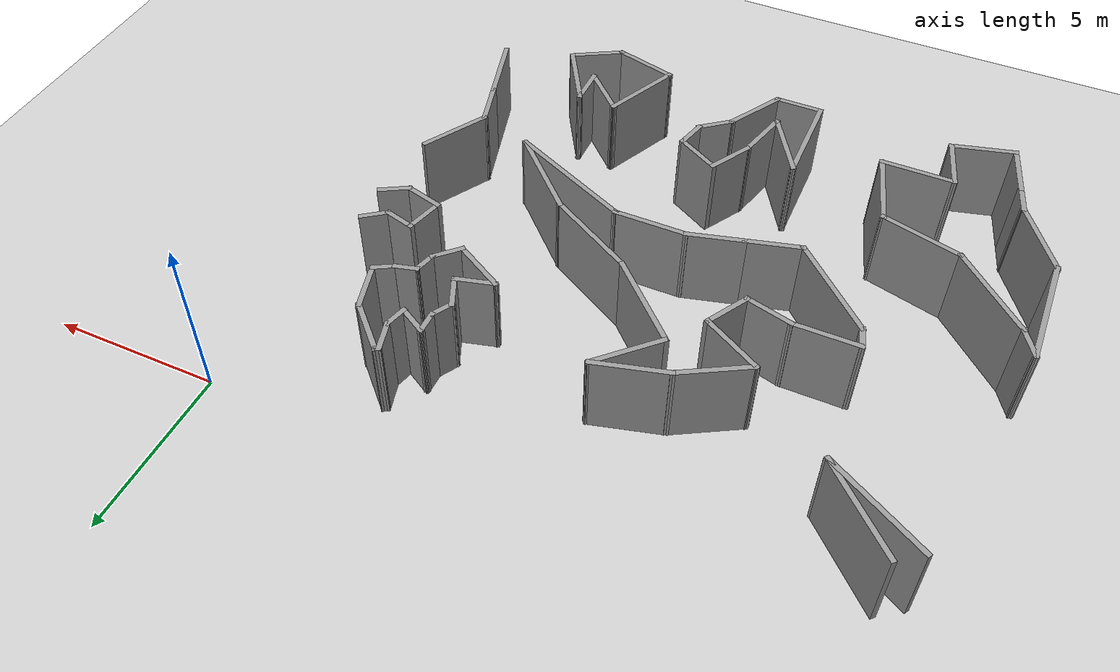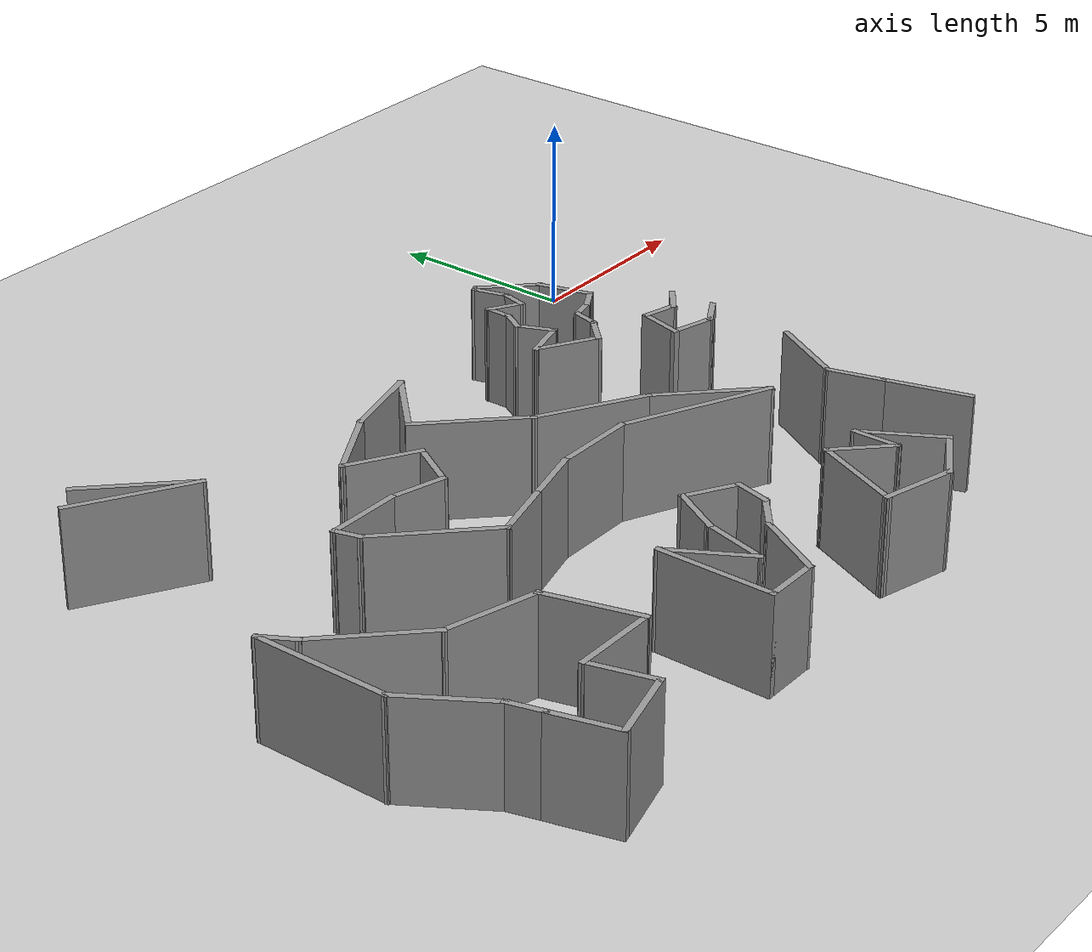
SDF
<sdf version="1.6">
 <world name="default">
  <model name="ground_plane">
   <static>1</static>
   <link name="link">
    <collision name="collision">
     <geometry><plane><normal>0 0 1</normal><size>100 100</size></plane></geometry>
     <surface><friction><ode><mu>100</mu><mu2>50</mu2></ode></friction></surface>
    </collision>
    <visual name="visual">
     <cast_shadows>0</cast_shadows>
     <geometry><plane><normal>0 0 1</normal><size>100 100</size></plane></geometry>
     <material>
      <script><uri>file://media/materials/scripts/gazebo.material</uri><name>Gazebo/Grey</name></script>
     </material>
    </visual>
   </link>
  </model>
  <model name="square_1">
   <pose>0.009703 -0.009719 0 0 -0 0</pose>
   <link name="Wall_112">
    <collision name="Wall_112_Collision">
     <geometry><box><size>3 0.15 2.5</size></box></geometry>
     <pose>0 0 1.25 0 -0 0</pose>
    </collision>
    <visual name="Wall_112_Visual">
     <pose>0 0 1.25 0 -0 0</pose>
     <geometry><box><size>3 0.15 2.5</size></box></geometry>
     <material>
      <script><uri>file://media/materials/scripts/gazebo.material</uri><name>Gazebo/Grey</name></script>
      <ambient>1 1 1 1</ambient>
     </material>
     <meta><layer>0</layer></meta>
    </visual>
    <pose>-5.78523 -8.94267 0 0 -0 2.35619</pose>
   </link>
   <link name="Wall_113">
    <collision name="Wall_113_Collision">
     <geometry><box><size>3 0.15 2.5</size></box></geometry>
     <pose>0 0 1.25 0 -0 0</pose>
    </collision>
    <visual name="Wall_113_Visual">
     <pose>0 0 1.25 0 -0 0</pose>
     <geometry><box><size>3 0.15 2.5</size></box></geometry>
     <material>
      <script><uri>file://media/materials/scripts/gazebo.material</uri><name>Gazebo/Grey</name></script>
      <ambient>1 1 1 1</ambient>
     </material>
     <meta><layer>0</layer></meta>
    </visual>
    <pose>-8.02694 -7.22255 0 0 -0 2.61799</pose>
   </link>
   <link name="Wall_114">
    <collision name="Wall_114_Collision">
     <geometry><box><size>3 0.15 2.5</size></box></geometry>
     <pose>0 0 1.25 0 -0 0</pose>
    </collision>
    <visual name="Wall_114_Visual">
     <pose>0 0 1.25 0 -0 0</pose>
     <geometry><box><size>3 0.15 2.5</size></box></geometry>
     <material>
      <script><uri>file://media/materials/scripts/gazebo.material</uri><name>Gazebo/Grey</name></script>
      <ambient>1 1 1 1</ambient>
     </material>
     <meta><layer>0</layer></meta>
    </visual>
    <pose>-10.2687 -5.50242 0 0 -0 2.35619</pose>
   </link>
   <link name="Wall_115">
    <collision name="Wall_115_Collision">
     <geometry><box><size>2.25 0.15 2.5</size></box></geometry>
     <pose>0 0 1.25 0 -0 0</pose>
    </collision>
    <visual name="Wall_115_Visual">
     <pose>0 0 1.25 0 -0 0</pose>
     <geometry><box><size>2.25 0.15 2.5</size></box></geometry>
     <material>
      <script><uri>file://media/materials/scripts/gazebo.material</uri><name>Gazebo/Grey</name></script>
      <ambient>1 1 1 1</ambient>
     </material>
     <meta><layer>0</layer></meta>
    </visual>
    <pose>-10.5338 -3.75233 0 0 -0 0.785398</pose>
   </link>
   <link name="Wall_116">
    <collision name="Wall_116_Collision">
     <geometry><box><size>2.25 0.15 2.5</size></box></geometry>
     <pose>0 0 1.25 0 -0 0</pose>
    </collision>
    <visual name="Wall_116_Visual">
     <pose>0 0 1.25 0 -0 0</pose>
     <geometry><box><size>2.25 0.15 2.5</size></box></geometry>
     <material>
      <script><uri>file://media/materials/scripts/gazebo.material</uri><name>Gazebo/Grey</name></script>
      <ambient>1 1 1 1</ambient>
     </material>
     <meta><layer>0</layer></meta>
    </visual>
    <pose>-10.8056 -3.28163 0 0 0 -2.87979</pose>
   </link>
   <link name="Wall_117">
    <collision name="Wall_117_Collision">
     <geometry><box><size>2.25 0.15 2.5</size></box></geometry>
     <pose>0 0 1.25 0 -0 0</pose>
    </collision>
    <visual name="Wall_117_Visual">
     <pose>0 0 1.25 0 -0 0</pose>
     <geometry><box><size>2.25 0.15 2.5</size></box></geometry>
     <material>
      <script><uri>file://media/materials/scripts/gazebo.material</uri><name>Gazebo/Grey</name></script>
      <ambient>1 1 1 1</ambient>
     </material>
     <meta><layer>0</layer></meta>
    </visual>
    <pose>-12.7291 -4.07839 0 0 0 -2.61799</pose>
   </link>
   <link name="Wall_118">
    <collision name="Wall_118_Collision">
     <geometry><box><size>2 0.15 2.5</size></box></geometry>
     <pose>0 0 1.25 0 -0 0</pose>
    </collision>
    <visual name="Wall_118_Visual">
     <pose>0 0 1.25 0 -0 0</pose>
     <geometry><box><size>2 0.15 2.5</size></box></geometry>
     <material>
      <script><uri>file://media/materials/scripts/gazebo.material</uri><name>Gazebo/Grey</name></script>
      <ambient>1 1 1 1</ambient>
     </material>
     <meta><layer>0</layer></meta>
    </visual>
    <pose>-12.8374 -5.06589 0 0 0 -0.523599</pose>
   </link>
   <link name="Wall_119">
    <collision name="Wall_119_Collision">
     <geometry><box><size>1.5 0.15 2.5</size></box></geometry>
     <pose>0 0 1.25 0 -0 0</pose>
    </collision>
    <visual name="Wall_119_Visual">
     <pose>0 0 1.25 0 -0 0</pose>
     <geometry><box><size>1.5 0.15 2.5</size></box></geometry>
     <material>
      <script><uri>file://media/materials/scripts/gazebo.material</uri><name>Gazebo/Grey</name></script>
      <ambient>1 1 1 1</ambient>
     </material>
     <meta><layer>0</layer></meta>
    </visual>
    <pose>-12.3738 -6.11296 0 0 0 -2.0944</pose>
   </link>
   <link name="Wall_120">
    <collision name="Wall_120_Collision">
     <geometry><box><size>1.5 0.15 2.5</size></box></geometry>
     <pose>0 0 1.25 0 -0 0</pose>
    </collision>
    <visual name="Wall_120_Visual">
     <pose>0 0 1.25 0 -0 0</pose>
     <geometry><box><size>1.5 0.15 2.5</size></box></geometry>
     <material>
      <script><uri>file://media/materials/scripts/gazebo.material</uri><name>Gazebo/Grey</name></script>
      <ambient>1 1 1 1</ambient>
     </material>
     <meta><layer>0</layer></meta>
    </visual>
    <pose>-13.3633 -6.52282 0 0 -0 2.87979</pose>
   </link>
   <link name="Wall_121">
    <collision name="Wall_121_Collision">
     <geometry><box><size>2 0.15 2.5</size></box></geometry>
     <pose>0 0 1.25 0 -0 0</pose>
    </collision>
    <visual name="Wall_121_Visual">
     <pose>0 0 1.25 0 -0 0</pose>
     <geometry><box><size>2 0.15 2.5</size></box></geometry>
     <material>
      <script><uri>file://media/materials/scripts/gazebo.material</uri><name>Gazebo/Grey</name></script>
      <ambient>1 1 1 1</ambient>
     </material>
     <meta><layer>0</layer></meta>
    </visual>
    <pose>-14.9403 -6.34812 0 0 -0 3.14159</pose>
   </link>
   <link name="Wall_122">
    <collision name="Wall_122_Collision">
     <geometry><box><size>0.75 0.15 2.5</size></box></geometry>
     <pose>0 0 1.25 0 -0 0</pose>
    </collision>
    <visual name="Wall_122_Visual">
     <pose>0 0 1.25 0 -0 0</pose>
     <geometry><box><size>0.75 0.15 2.5</size></box></geometry>
     <material>
      <script><uri>file://media/materials/scripts/gazebo.material</uri><name>Gazebo/Grey</name></script>
      <ambient>1 1 1 1</ambient>
     </material>
     <meta><layer>0</layer></meta>
    </visual>
    <pose>-15.7877 -6.6379 0 0 0 -1.309</pose>
   </link>
   <link name="Wall_123">
    <collision name="Wall_123_Collision">
     <geometry><box><size>3.25 0.15 2.5</size></box></geometry>
     <pose>0 0 1.25 0 -0 0</pose>
    </collision>
    <visual name="Wall_123_Visual">
     <pose>0 0 1.25 0 -0 0</pose>
     <geometry><box><size>3.25 0.15 2.5</size></box></geometry>
     <material>
      <script><uri>file://media/materials/scripts/gazebo.material</uri><name>Gazebo/Grey</name></script>
      <ambient>1 1 1 1</ambient>
     </material>
     <meta><layer>0</layer></meta>
    </visual>
    <pose>-14.614 -8.02369 0 0 0 -0.785398</pose>
   </link>
   <link name="Wall_124">
    <collision name="Wall_124_Collision">
     <geometry><box><size>1.75 0.15 2.5</size></box></geometry>
     <pose>0 0 1.25 0 -0 0</pose>
    </collision>
    <visual name="Wall_124_Visual">
     <pose>0 0 1.25 0 -0 0</pose>
     <geometry><box><size>1.75 0.15 2.5</size></box></geometry>
     <material>
      <script><uri>file://media/materials/scripts/gazebo.material</uri><name>Gazebo/Grey</name></script>
      <ambient>1 1 1 1</ambient>
     </material>
     <meta><layer>0</layer></meta>
    </visual>
    <pose>-12.7452 -8.91265 0 0 -0 0.261799</pose>
   </link>
   <link name="Wall_125">
    <collision name="Wall_125_Collision">
     <geometry><box><size>1.75 0.15 2.5</size></box></geometry>
     <pose>0 0 1.25 0 -0 0</pose>
    </collision>
    <visual name="Wall_125_Visual">
     <pose>0 0 1.25 0 -0 0</pose>
     <geometry><box><size>1.75 0.15 2.5</size></box></geometry>
     <material>
      <script><uri>file://media/materials/scripts/gazebo.material</uri><name>Gazebo/Grey</name></script>
      <ambient>1 1 1 1</ambient>
     </material>
     <meta><layer>0</layer></meta>
    </visual>
    <pose>-11.1998 -8.49854 0 0 -0 0.261799</pose>
   </link>
   <link name="Wall_126">
    <collision name="Wall_126_Collision">
     <geometry><box><size>2.25 0.15 2.5</size></box></geometry>
     <pose>0 0 1.25 0 -0 0</pose>
    </collision>
    <visual name="Wall_126_Visual">
     <pose>0 0 1.25 0 -0 0</pose>
     <geometry><box><size>2.25 0.15 2.5</size></box></geometry>
     <material>
      <script><uri>file://media/materials/scripts/gazebo.material</uri><name>Gazebo/Grey</name></script>
      <ambient>1 1 1 1</ambient>
     </material>
     <meta><layer>0</layer></meta>
    </visual>
    <pose>-9.37702 -8.29148 0 0 -0 0</pose>
   </link>
   <link name="Wall_127">
    <collision name="Wall_127_Collision">
     <geometry><box><size>4.06792 0.15 2.5</size></box></geometry>
     <pose>0 0 1.25 0 -0 0</pose>
    </collision>
    <visual name="Wall_127_Visual">
     <pose>0 0 1.25 0 -0 0</pose>
     <geometry><box><size>4.06792 0.15 2.5</size></box></geometry>
     <material>
      <script><uri>file://media/materials/scripts/gazebo.material</uri><name>Gazebo/Grey</name></script>
      <ambient>1 1 1 1</ambient>
     </material>
     <meta><layer>0</layer></meta>
    </visual>
    <pose>-6.55231 -9.12089 0 0 0 -0.437187</pose>
   </link>
   <link name="Wall_136">
    <collision name="Wall_136_Collision">
     <geometry><box><size>2.25 0.15 2.5</size></box></geometry>
     <pose>0 0 1.25 0 -0 0</pose>
    </collision>
    <visual name="Wall_136_Visual">
     <pose>0 0 1.25 0 -0 0</pose>
     <geometry><box><size>2.25 0.15 2.5</size></box></geometry>
     <material>
      <script><uri>file://media/materials/scripts/gazebo.material</uri><name>Gazebo/Grey</name></script>
      <ambient>1 1 1 1</ambient>
     </material>
     <meta><layer>0</layer></meta>
    </visual>
    <pose>-2.63253 -9.56505 0 0 0 -2.0944</pose>
   </link>
   <link name="Wall_137">
    <collision name="Wall_137_Collision">
     <geometry><box><size>1.5 0.15 2.5</size></box></geometry>
     <pose>0 0 1.25 0 -0 0</pose>
    </collision>
    <visual name="Wall_137_Visual">
     <pose>0 0 1.25 0 -0 0</pose>
     <geometry><box><size>1.5 0.15 2.5</size></box></geometry>
     <material>
      <script><uri>file://media/materials/scripts/gazebo.material</uri><name>Gazebo/Grey</name></script>
      <ambient>1 1 1 1</ambient>
     </material>
     <meta><layer>0</layer></meta>
    </visual>
    <pose>-2.98283 -11.1264 0 0 0 -1.309</pose>
   </link>
   <link name="Wall_138">
    <collision name="Wall_138_Collision">
     <geometry><box><size>2.25 0.15 2.5</size></box></geometry>
     <pose>0 0 1.25 0 -0 0</pose>
    </collision>
    <visual name="Wall_138_Visual">
     <pose>0 0 1.25 0 -0 0</pose>
     <geometry><box><size>2.25 0.15 2.5</size></box></geometry>
     <material>
      <script><uri>file://media/materials/scripts/gazebo.material</uri><name>Gazebo/Grey</name></script>
      <ambient>1 1 1 1</ambient>
     </material>
     <meta><layer>0</layer></meta>
    </visual>
    <pose>-2.53637 -12.7926 0 0 0 -1.309</pose>
   </link>
   <link name="Wall_16">
    <collision name="Wall_16_Collision">
     <geometry><box><size>0.75 0.15 2.5</size></box></geometry>
     <pose>0 0 1.25 0 -0 0</pose>
    </collision>
    <visual name="Wall_16_Visual">
     <pose>0 0 1.25 0 -0 0</pose>
     <geometry><box><size>0.75 0.15 2.5</size></box></geometry>
     <material>
      <script><uri>file://media/materials/scripts/gazebo.material</uri><name>Gazebo/Grey</name></script>
      <ambient>1 1 1 1</ambient>
     </material>
     <meta><layer>0</layer></meta>
    </visual>
    <pose>-5.64275 -3.04511 0 0 -0 1.0472</pose>
   </link>
   <link name="Wall_17">
    <collision name="Wall_17_Collision">
     <geometry><box><size>0.75 0.15 2.5</size></box></geometry>
     <pose>0 0 1.25 0 -0 0</pose>
    </collision>
    <visual name="Wall_17_Visual">
     <pose>0 0 1.25 0 -0 0</pose>
     <geometry><box><size>0.75 0.15 2.5</size></box></geometry>
     <material>
      <script><uri>file://media/materials/scripts/gazebo.material</uri><name>Gazebo/Grey</name></script>
      <ambient>1 1 1 1</ambient>
     </material>
     <meta><layer>0</layer></meta>
    </visual>
    <pose>-5.49275 -2.4853 0 0 -0 1.5708</pose>
   </link>
   <link name="Wall_18">
    <collision name="Wall_18_Collision">
     <geometry><box><size>1 0.15 2.5</size></box></geometry>
     <pose>0 0 1.25 0 -0 0</pose>
    </collision>
    <visual name="Wall_18_Visual">
     <pose>0 0 1.25 0 -0 0</pose>
     <geometry><box><size>1 0.15 2.5</size></box></geometry>
     <material>
      <script><uri>file://media/materials/scripts/gazebo.material</uri><name>Gazebo/Grey</name></script>
      <ambient>1 1 1 1</ambient>
     </material>
     <meta><layer>0</layer></meta>
    </visual>
    <pose>-5.12469 -2.3978 0 0 0 -0.523599</pose>
   </link>
   <link name="Wall_19">
    <collision name="Wall_19_Collision">
     <geometry><box><size>0.75 0.15 2.5</size></box></geometry>
     <pose>0 0 1.25 0 -0 0</pose>
    </collision>
    <visual name="Wall_19_Visual">
     <pose>0 0 1.25 0 -0 0</pose>
     <geometry><box><size>0.75 0.15 2.5</size></box></geometry>
     <material>
      <script><uri>file://media/materials/scripts/gazebo.material</uri><name>Gazebo/Grey</name></script>
      <ambient>1 1 1 1</ambient>
     </material>
     <meta><layer>0</layer></meta>
    </visual>
    <pose>-4.67898 -2.32053 0 0 -0 1.309</pose>
   </link>
   <link name="Wall_192">
    <collision name="Wall_192_Collision">
     <geometry><box><size>3 0.15 2.5</size></box></geometry>
     <pose>0 0 1.25 0 -0 0</pose>
    </collision>
    <visual name="Wall_192_Visual">
     <pose>0 0 1.25 0 -0 0</pose>
     <geometry><box><size>3 0.15 2.5</size></box></geometry>
     <material>
      <script><uri>file://media/materials/scripts/gazebo.material</uri><name>Gazebo/Grey</name></script>
      <ambient>1 1 1 1</ambient>
     </material>
     <meta><layer>0</layer></meta>
    </visual>
    <pose>-17.0262 -1.65448 0 0 0 -0.785398</pose>
   </link>
   <link name="Wall_193">
    <collision name="Wall_193_Collision">
     <geometry><box><size>3.25 0.15 2.5</size></box></geometry>
     <pose>0 0 1.25 0 -0 0</pose>
    </collision>
    <visual name="Wall_193_Visual">
     <pose>0 0 1.25 0 -0 0</pose>
     <geometry><box><size>3.25 0.15 2.5</size></box></geometry>
     <material>
      <script><uri>file://media/materials/scripts/gazebo.material</uri><name>Gazebo/Grey</name></script>
      <ambient>1 1 1 1</ambient>
     </material>
     <meta><layer>0</layer></meta>
    </visual>
    <pose>-17.3609 -1.88711 0 0 -0 2.61799</pose>
   </link>
   <link name="Wall_20">
    <collision name="Wall_20_Collision">
     <geometry><box><size>1 0.15 2.5</size></box></geometry>
     <pose>0 0 1.25 0 -0 0</pose>
    </collision>
    <visual name="Wall_20_Visual">
     <pose>0 0 1.25 0 -0 0</pose>
     <geometry><box><size>1 0.15 2.5</size></box></geometry>
     <material>
      <script><uri>file://media/materials/scripts/gazebo.material</uri><name>Gazebo/Grey</name></script>
      <ambient>1 1 1 1</ambient>
     </material>
     <meta><layer>0</layer></meta>
    </visual>
    <pose>-4.71134 -1.62023 0 0 -0 1.8326</pose>
   </link>
   <link name="Wall_207">
    <collision name="Wall_207_Collision">
     <geometry><box><size>1 0.15 2.5</size></box></geometry>
     <pose>0 0 1.25 0 -0 0</pose>
    </collision>
    <visual name="Wall_207_Visual">
     <pose>0 0 1.25 0 -0 0</pose>
     <geometry><box><size>1 0.15 2.5</size></box></geometry>
     <material>
      <script><uri>file://media/materials/scripts/gazebo.material</uri><name>Gazebo/Grey</name></script>
      <ambient>1 1 1 1</ambient>
     </material>
     <meta><layer>0</layer></meta>
    </visual>
    <pose>-9.09639 -12.3404 0 0 -0 1.309</pose>
   </link>
   <link name="Wall_208">
    <collision name="Wall_208_Collision">
     <geometry><box><size>1.5 0.15 2.5</size></box></geometry>
     <pose>0 0 1.25 0 -0 0</pose>
    </collision>
    <visual name="Wall_208_Visual">
     <pose>0 0 1.25 0 -0 0</pose>
     <geometry><box><size>1.5 0.15 2.5</size></box></geometry>
     <material>
      <script><uri>file://media/materials/scripts/gazebo.material</uri><name>Gazebo/Grey</name></script>
      <ambient>1 1 1 1</ambient>
     </material>
     <meta><layer>0</layer></meta>
    </visual>
    <pose>-9.57096 -11.5924 0 0 -0 2.61799</pose>
   </link>
   <link name="Wall_209">
    <collision name="Wall_209_Collision">
     <geometry><box><size>1.5 0.15 2.5</size></box></geometry>
     <pose>0 0 1.25 0 -0 0</pose>
    </collision>
    <visual name="Wall_209_Visual">
     <pose>0 0 1.25 0 -0 0</pose>
     <geometry><box><size>1.5 0.15 2.5</size></box></geometry>
     <material>
      <script><uri>file://media/materials/scripts/gazebo.material</uri><name>Gazebo/Grey</name></script>
      <ambient>1 1 1 1</ambient>
     </material>
     <meta><layer>0</layer></meta>
    </visual>
    <pose>-10.493 -11.8395 0 0 0 -2.0944</pose>
   </link>
   <link name="Wall_21">
    <collision name="Wall_21_Collision">
     <geometry><box><size>0.25 0.15 2.5</size></box></geometry>
     <pose>0 0 1.25 0 -0 0</pose>
    </collision>
    <visual name="Wall_21_Visual">
     <pose>0 0 1.25 0 -0 0</pose>
     <geometry><box><size>0.25 0.15 2.5</size></box></geometry>
     <material>
      <script><uri>file://media/materials/scripts/gazebo.material</uri><name>Gazebo/Grey</name></script>
      <ambient>1 1 1 1</ambient>
     </material>
     <meta><layer>0</layer></meta>
    </visual>
    <pose>-4.77803 -1.18471 0 0 -0 0.523599</pose>
   </link>
   <link name="Wall_210">
    <collision name="Wall_210_Collision">
     <geometry><box><size>1.75 0.15 2.5</size></box></geometry>
     <pose>0 0 1.25 0 -0 0</pose>
    </collision>
    <visual name="Wall_210_Visual">
     <pose>0 0 1.25 0 -0 0</pose>
     <geometry><box><size>1.75 0.15 2.5</size></box></geometry>
     <material>
      <script><uri>file://media/materials/scripts/gazebo.material</uri><name>Gazebo/Grey</name></script>
      <ambient>1 1 1 1</ambient>
     </material>
     <meta><layer>0</layer></meta>
    </visual>
    <pose>-11.0376 -13.1968 0 0 0 -1.8326</pose>
   </link>
   <link name="Wall_211">
    <collision name="Wall_211_Collision">
     <geometry><box><size>2.25 0.15 2.5</size></box></geometry>
     <pose>0 0 1.25 0 -0 0</pose>
    </collision>
    <visual name="Wall_211_Visual">
     <pose>0 0 1.25 0 -0 0</pose>
     <geometry><box><size>2.25 0.15 2.5</size></box></geometry>
     <material>
      <script><uri>file://media/materials/scripts/gazebo.material</uri><name>Gazebo/Grey</name></script>
      <ambient>1 1 1 1</ambient>
     </material>
     <meta><layer>0</layer></meta>
    </visual>
    <pose>-11.7696 -13.0602 0 0 -0 2.0944</pose>
   </link>
   <link name="Wall_212">
    <collision name="Wall_212_Collision">
     <geometry><box><size>3 0.15 2.5</size></box></geometry>
     <pose>0 0 1.25 0 -0 0</pose>
    </collision>
    <visual name="Wall_212_Visual">
     <pose>0 0 1.25 0 -0 0</pose>
     <geometry><box><size>3 0.15 2.5</size></box></geometry>
     <material>
      <script><uri>file://media/materials/scripts/gazebo.material</uri><name>Gazebo/Grey</name></script>
      <ambient>1 1 1 1</ambient>
     </material>
     <meta><layer>0</layer></meta>
    </visual>
    <pose>-12.2946 -13.5759 0 0 0 -1.5708</pose>
   </link>
   <link name="Wall_213">
    <collision name="Wall_213_Collision">
     <geometry><box><size>1.5 0.15 2.5</size></box></geometry>
     <pose>0 0 1.25 0 -0 0</pose>
    </collision>
    <visual name="Wall_213_Visual">
     <pose>0 0 1.25 0 -0 0</pose>
     <geometry><box><size>1.5 0.15 2.5</size></box></geometry>
     <material>
      <script><uri>file://media/materials/scripts/gazebo.material</uri><name>Gazebo/Grey</name></script>
      <ambient>1 1 1 1</ambient>
     </material>
     <meta><layer>0</layer></meta>
    </visual>
    <pose>-11.6196 -15.0009 0 0 -0 0</pose>
   </link>
   <link name="Wall_214">
    <collision name="Wall_214_Collision">
     <geometry><box><size>2 0.15 2.5</size></box></geometry>
     <pose>0 0 1.25 0 -0 0</pose>
    </collision>
    <visual name="Wall_214_Visual">
     <pose>0 0 1.25 0 -0 0</pose>
     <geometry><box><size>2 0.15 2.5</size></box></geometry>
     <material>
      <script><uri>file://media/materials/scripts/gazebo.material</uri><name>Gazebo/Grey</name></script>
      <ambient>1 1 1 1</ambient>
     </material>
     <meta><layer>0</layer></meta>
    </visual>
    <pose>-10.4821 -14.1998 0 0 -0 1.0472</pose>
   </link>
   <link name="Wall_215">
    <collision name="Wall_215_Collision">
     <geometry><box><size>1.18971 0.15 2.5</size></box></geometry>
     <pose>0 0 1.25 0 -0 0</pose>
    </collision>
    <visual name="Wall_215_Visual">
     <pose>0 0 1.25 0 -0 0</pose>
     <geometry><box><size>1.18971 0.15 2.5</size></box></geometry>
     <material>
      <script><uri>file://media/materials/scripts/gazebo.material</uri><name>Gazebo/Grey</name></script>
      <ambient>1 1 1 1</ambient>
     </material>
     <meta><layer>0</layer></meta>
    </visual>
    <pose>-9.61301 -13.0748 0 0 -0 0.672623</pose>
   </link>
   <link name="Wall_217">
    <collision name="Wall_217_Collision">
     <geometry><box><size>1.75 0.15 2.5</size></box></geometry>
     <pose>0 0 1.25 0 -0 0</pose>
    </collision>
    <visual name="Wall_217_Visual">
     <pose>0 0 1.25 0 -0 0</pose>
     <geometry><box><size>1.75 0.15 2.5</size></box></geometry>
     <material>
      <script><uri>file://media/materials/scripts/gazebo.material</uri><name>Gazebo/Grey</name></script>
      <ambient>1 1 1 1</ambient>
     </material>
     <meta><layer>0</layer></meta>
    </visual>
    <pose>-5.93194 -13.1407 0 0 0 -0.785398</pose>
   </link>
   <link name="Wall_218">
    <collision name="Wall_218_Collision">
     <geometry><box><size>1.25 0.15 2.5</size></box></geometry>
     <pose>0 0 1.25 0 -0 0</pose>
    </collision>
    <visual name="Wall_218_Visual">
     <pose>0 0 1.25 0 -0 0</pose>
     <geometry><box><size>1.25 0.15 2.5</size></box></geometry>
     <material>
      <script><uri>file://media/materials/scripts/gazebo.material</uri><name>Gazebo/Grey</name></script>
      <ambient>1 1 1 1</ambient>
     </material>
     <meta><layer>0</layer></meta>
    </visual>
    <pose>-5.36625 -13.1564 0 0 -0 1.5708</pose>
   </link>
   <link name="Wall_219">
    <collision name="Wall_219_Collision">
     <geometry><box><size>2.25 0.15 2.5</size></box></geometry>
     <pose>0 0 1.25 0 -0 0</pose>
    </collision>
    <visual name="Wall_219_Visual">
     <pose>0 0 1.25 0 -0 0</pose>
     <geometry><box><size>2.25 0.15 2.5</size></box></geometry>
     <material>
      <script><uri>file://media/materials/scripts/gazebo.material</uri><name>Gazebo/Grey</name></script>
      <ambient>1 1 1 1</ambient>
     </material>
     <meta><layer>0</layer></meta>
    </visual>
    <pose>-4.84125 -13.5158 0 0 0 -1.0472</pose>
   </link>
   <link name="Wall_22">
    <collision name="Wall_22_Collision">
     <geometry><box><size>1.75 0.15 2.5</size></box></geometry>
     <pose>0 0 1.25 0 -0 0</pose>
    </collision>
    <visual name="Wall_22_Visual">
     <pose>0 0 1.25 0 -0 0</pose>
     <geometry><box><size>1.75 0.15 2.5</size></box></geometry>
     <material>
      <script><uri>file://media/materials/scripts/gazebo.material</uri><name>Gazebo/Grey</name></script>
      <ambient>1 1 1 1</ambient>
     </material>
     <meta><layer>0</layer></meta>
    </visual>
    <pose>-4.16905 -1.7254 0 0 0 -0.785398</pose>
   </link>
   <link name="Wall_220">
    <collision name="Wall_220_Collision">
     <geometry><box><size>1.75 0.15 2.5</size></box></geometry>
     <pose>0 0 1.25 0 -0 0</pose>
    </collision>
    <visual name="Wall_220_Visual">
     <pose>0 0 1.25 0 -0 0</pose>
     <geometry><box><size>1.75 0.15 2.5</size></box></geometry>
     <material>
      <script><uri>file://media/materials/scripts/gazebo.material</uri><name>Gazebo/Grey</name></script>
      <ambient>1 1 1 1</ambient>
     </material>
     <meta><layer>0</layer></meta>
    </visual>
    <pose>-5.00907 -14.8251 0 0 0 -2.61799</pose>
   </link>
   <link name="Wall_221">
    <collision name="Wall_221_Collision">
     <geometry><box><size>2 0.15 2.5</size></box></geometry>
     <pose>0 0 1.25 0 -0 0</pose>
    </collision>
    <visual name="Wall_221_Visual">
     <pose>0 0 1.25 0 -0 0</pose>
     <geometry><box><size>2 0.15 2.5</size></box></geometry>
     <material>
      <script><uri>file://media/materials/scripts/gazebo.material</uri><name>Gazebo/Grey</name></script>
      <ambient>1 1 1 1</ambient>
     </material>
     <meta><layer>0</layer></meta>
    </visual>
    <pose>-6.59537 -14.9857 0 0 -0 2.87979</pose>
   </link>
   <link name="Wall_222">
    <collision name="Wall_222_Collision">
     <geometry><box><size>2.53677 0.15 2.5</size></box></geometry>
     <pose>0 0 1.25 0 -0 0</pose>
    </collision>
    <visual name="Wall_222_Visual">
     <pose>0 0 1.25 0 -0 0</pose>
     <geometry><box><size>2.53677 0.15 2.5</size></box></geometry>
     <material>
      <script><uri>file://media/materials/scripts/gazebo.material</uri><name>Gazebo/Grey</name></script>
      <ambient>1 1 1 1</ambient>
     </material>
     <meta><layer>0</layer></meta>
    </visual>
    <pose>-6.99324 -13.6607 0 0 -0 1.14252</pose>
   </link>
   <link name="Wall_23">
    <collision name="Wall_23_Collision">
     <geometry><box><size>1.5 0.15 2.5</size></box></geometry>
     <pose>0 0 1.25 0 -0 0</pose>
    </collision>
    <visual name="Wall_23_Visual">
     <pose>0 0 1.25 0 -0 0</pose>
     <geometry><box><size>1.5 0.15 2.5</size></box></geometry>
     <material>
      <script><uri>file://media/materials/scripts/gazebo.material</uri><name>Gazebo/Grey</name></script>
      <ambient>1 1 1 1</ambient>
     </material>
     <meta><layer>0</layer></meta>
    </visual>
    <pose>-3.42866 -2.94308 0 0 0 -1.309</pose>
   </link>
   <link name="Wall_24">
    <collision name="Wall_24_Collision">
     <geometry><box><size>0.75 0.15 2.5</size></box></geometry>
     <pose>0 0 1.25 0 -0 0</pose>
    </collision>
    <visual name="Wall_24_Visual">
     <pose>0 0 1.25 0 -0 0</pose>
     <geometry><box><size>0.75 0.15 2.5</size></box></geometry>
     <material>
      <script><uri>file://media/materials/scripts/gazebo.material</uri><name>Gazebo/Grey</name></script>
      <ambient>1 1 1 1</ambient>
     </material>
     <meta><layer>0</layer></meta>
    </visual>
    <pose>-3.51376 -3.74508 0 0 0 -2.61799</pose>
   </link>
   <link name="Wall_25">
    <collision name="Wall_25_Collision">
     <geometry><box><size>0.75 0.15 2.5</size></box></geometry>
     <pose>0 0 1.25 0 -0 0</pose>
    </collision>
    <visual name="Wall_25_Visual">
     <pose>0 0 1.25 0 -0 0</pose>
     <geometry><box><size>0.75 0.15 2.5</size></box></geometry>
     <material>
      <script><uri>file://media/materials/scripts/gazebo.material</uri><name>Gazebo/Grey</name></script>
      <ambient>1 1 1 1</ambient>
     </material>
     <meta><layer>0</layer></meta>
    </visual>
    <pose>-4.06335 -3.97273 0 0 0 -2.87979</pose>
   </link>
   <link name="Wall_257">
    <collision name="Wall_257_Collision">
     <geometry><box><size>3.5 0.15 2.5</size></box></geometry>
     <pose>0 0 1.25 0 -0 0</pose>
    </collision>
    <visual name="Wall_257_Visual">
     <pose>0 0 1.25 0 -0 0</pose>
     <geometry><box><size>3.5 0.15 2.5</size></box></geometry>
     <material>
      <script><uri>file://media/materials/scripts/gazebo.material</uri><name>Gazebo/Grey</name></script>
      <ambient>1 1 1 1</ambient>
     </material>
     <meta><layer>0</layer></meta>
    </visual>
    <pose>-19.8926 -9.53588 0 0 -0 1.5708</pose>
   </link>
   <link name="Wall_258">
    <collision name="Wall_258_Collision">
     <geometry><box><size>1 0.15 2.5</size></box></geometry>
     <pose>0 0 1.25 0 -0 0</pose>
    </collision>
    <visual name="Wall_258_Visual">
     <pose>0 0 1.25 0 -0 0</pose>
     <geometry><box><size>1 0.15 2.5</size></box></geometry>
     <material>
      <script><uri>file://media/materials/scripts/gazebo.material</uri><name>Gazebo/Grey</name></script>
      <ambient>1 1 1 1</ambient>
     </material>
     <meta><layer>0</layer></meta>
    </visual>
    <pose>-19.6802 -8.22894 0 0 0 -1.0472</pose>
   </link>
   <link name="Wall_259">
    <collision name="Wall_259_Collision">
     <geometry><box><size>3 0.15 2.5</size></box></geometry>
     <pose>0 0 1.25 0 -0 0</pose>
    </collision>
    <visual name="Wall_259_Visual">
     <pose>0 0 1.25 0 -0 0</pose>
     <geometry><box><size>3 0.15 2.5</size></box></geometry>
     <material>
      <script><uri>file://media/materials/scripts/gazebo.material</uri><name>Gazebo/Grey</name></script>
      <ambient>1 1 1 1</ambient>
     </material>
     <meta><layer>0</layer></meta>
    </visual>
    <pose>-18.46 -9.60463 0 0 0 -0.785398</pose>
   </link>
   <link name="Wall_26">
    <collision name="Wall_26_Collision">
     <geometry><box><size>0.75 0.15 2.5</size></box></geometry>
     <pose>0 0 1.25 0 -0 0</pose>
    </collision>
    <visual name="Wall_26_Visual">
     <pose>0 0 1.25 0 -0 0</pose>
     <geometry><box><size>0.75 0.15 2.5</size></box></geometry>
     <material>
      <script><uri>file://media/materials/scripts/gazebo.material</uri><name>Gazebo/Grey</name></script>
      <ambient>1 1 1 1</ambient>
     </material>
     <meta><layer>0</layer></meta>
    </visual>
    <pose>-4.43077 -4.34015 0 0 0 -1.8326</pose>
   </link>
   <link name="Wall_260">
    <collision name="Wall_260_Collision">
     <geometry><box><size>2.5 0.15 2.5</size></box></geometry>
     <pose>0 0 1.25 0 -0 0</pose>
    </collision>
    <visual name="Wall_260_Visual">
     <pose>0 0 1.25 0 -0 0</pose>
     <geometry><box><size>2.5 0.15 2.5</size></box></geometry>
     <material>
      <script><uri>file://media/materials/scripts/gazebo.material</uri><name>Gazebo/Grey</name></script>
      <ambient>1 1 1 1</ambient>
     </material>
     <meta><layer>0</layer></meta>
    </visual>
    <pose>-16.3174 -10.9164 0 0 0 -0.261799</pose>
   </link>
   <link name="Wall_261">
    <collision name="Wall_261_Collision">
     <geometry><box><size>2.5 0.15 2.5</size></box></geometry>
     <pose>0 0 1.25 0 -0 0</pose>
    </collision>
    <visual name="Wall_261_Visual">
     <pose>0 0 1.25 0 -0 0</pose>
     <geometry><box><size>2.5 0.15 2.5</size></box></geometry>
     <material>
      <script><uri>file://media/materials/scripts/gazebo.material</uri><name>Gazebo/Grey</name></script>
      <ambient>1 1 1 1</ambient>
     </material>
     <meta><layer>0</layer></meta>
    </visual>
    <pose>-14.8784 -12.3554 0 0 0 -1.309</pose>
   </link>
   <link name="Wall_262">
    <collision name="Wall_262_Collision">
     <geometry><box><size>2.25 0.15 2.5</size></box></geometry>
     <pose>0 0 1.25 0 -0 0</pose>
    </collision>
    <visual name="Wall_262_Visual">
     <pose>0 0 1.25 0 -0 0</pose>
     <geometry><box><size>2.25 0.15 2.5</size></box></geometry>
     <material>
      <script><uri>file://media/materials/scripts/gazebo.material</uri><name>Gazebo/Grey</name></script>
      <ambient>1 1 1 1</ambient>
     </material>
     <meta><layer>0</layer></meta>
    </visual>
    <pose>-15.6242 -13.4904 0 0 -0 3.14159</pose>
   </link>
   <link name="Wall_263">
    <collision name="Wall_263_Collision">
     <geometry><box><size>1.75 0.15 2.5</size></box></geometry>
     <pose>0 0 1.25 0 -0 0</pose>
    </collision>
    <visual name="Wall_263_Visual">
     <pose>0 0 1.25 0 -0 0</pose>
     <geometry><box><size>1.75 0.15 2.5</size></box></geometry>
     <material>
      <script><uri>file://media/materials/scripts/gazebo.material</uri><name>Gazebo/Grey</name></script>
      <ambient>1 1 1 1</ambient>
     </material>
     <meta><layer>0</layer></meta>
    </visual>
    <pose>-16.4672 -14.2631 0 0 0 -1.309</pose>
   </link>
   <link name="Wall_264">
    <collision name="Wall_264_Collision">
     <geometry><box><size>2 0.15 2.5</size></box></geometry>
     <pose>0 0 1.25 0 -0 0</pose>
    </collision>
    <visual name="Wall_264_Visual">
     <pose>0 0 1.25 0 -0 0</pose>
     <geometry><box><size>2 0.15 2.5</size></box></geometry>
     <material>
      <script><uri>file://media/materials/scripts/gazebo.material</uri><name>Gazebo/Grey</name></script>
      <ambient>1 1 1 1</ambient>
     </material>
     <meta><layer>0</layer></meta>
    </visual>
    <pose>-17.1536 -15.2753 0 0 0 -2.87979</pose>
   </link>
   <link name="Wall_265">
    <collision name="Wall_265_Collision">
     <geometry><box><size>1.75 0.15 2.5</size></box></geometry>
     <pose>0 0 1.25 0 -0 0</pose>
    </collision>
    <visual name="Wall_265_Visual">
     <pose>0 0 1.25 0 -0 0</pose>
     <geometry><box><size>1.75 0.15 2.5</size></box></geometry>
     <material>
      <script><uri>file://media/materials/scripts/gazebo.material</uri><name>Gazebo/Grey</name></script>
      <ambient>1 1 1 1</ambient>
     </material>
     <meta><layer>0</layer></meta>
    </visual>
    <pose>-18.2542 -14.742 0 0 -0 1.8326</pose>
   </link>
   <link name="Wall_266">
    <collision name="Wall_266_Collision">
     <geometry><box><size>1 0.15 2.5</size></box></geometry>
     <pose>0 0 1.25 0 -0 0</pose>
    </collision>
    <visual name="Wall_266_Visual">
     <pose>0 0 1.25 0 -0 0</pose>
     <geometry><box><size>1 0.15 2.5</size></box></geometry>
     <material>
      <script><uri>file://media/materials/scripts/gazebo.material</uri><name>Gazebo/Grey</name></script>
      <ambient>1 1 1 1</ambient>
     </material>
     <meta><layer>0</layer></meta>
    </visual>
    <pose>-18.5712 -13.5587 0 0 -0 1.8326</pose>
   </link>
   <link name="Wall_267">
    <collision name="Wall_267_Collision">
     <geometry><box><size>2.4349 0.15 2.5</size></box></geometry>
     <pose>0 0 1.25 0 -0 0</pose>
    </collision>
    <visual name="Wall_267_Visual">
     <pose>0 0 1.25 0 -0 0</pose>
     <geometry><box><size>2.4349 0.15 2.5</size></box></geometry>
     <material>
      <script><uri>file://media/materials/scripts/gazebo.material</uri><name>Gazebo/Grey</name></script>
      <ambient>1 1 1 1</ambient>
     </material>
     <meta><layer>0</layer></meta>
    </visual>
    <pose>-19.2869 -12.1795 0 0 -0 2.12963</pose>
   </link>
   <link name="Wall_27">
    <collision name="Wall_27_Collision">
     <geometry><box><size>1 0.15 2.5</size></box></geometry>
     <pose>0 0 1.25 0 -0 0</pose>
    </collision>
    <visual name="Wall_27_Visual">
     <pose>0 0 1.25 0 -0 0</pose>
     <geometry><box><size>1 0.15 2.5</size></box></geometry>
     <material>
      <script><uri>file://media/materials/scripts/gazebo.material</uri><name>Gazebo/Grey</name></script>
      <ambient>1 1 1 1</ambient>
     </material>
     <meta><layer>0</layer></meta>
    </visual>
    <pose>-4.80894 -4.93045 0 0 0 -2.35619</pose>
   </link>
   <link name="Wall_28">
    <collision name="Wall_28_Collision">
     <geometry><box><size>1.75 0.15 2.5</size></box></geometry>
     <pose>0 0 1.25 0 -0 0</pose>
    </collision>
    <visual name="Wall_28_Visual">
     <pose>0 0 1.25 0 -0 0</pose>
     <geometry><box><size>1.75 0.15 2.5</size></box></geometry>
     <material>
      <script><uri>file://media/materials/scripts/gazebo.material</uri><name>Gazebo/Grey</name></script>
      <ambient>1 1 1 1</ambient>
     </material>
     <meta><layer>0</layer></meta>
    </visual>
    <pose>-5.80228 -4.83097 0 0 -0 2.61799</pose>
   </link>
   <link name="Wall_29">
    <collision name="Wall_29_Collision">
     <geometry><box><size>1.25 0.15 2.5</size></box></geometry>
     <pose>0 0 1.25 0 -0 0</pose>
    </collision>
    <visual name="Wall_29_Visual">
     <pose>0 0 1.25 0 -0 0</pose>
     <geometry><box><size>1.25 0.15 2.5</size></box></geometry>
     <material>
      <script><uri>file://media/materials/scripts/gazebo.material</uri><name>Gazebo/Grey</name></script>
      <ambient>1 1 1 1</ambient>
     </material>
     <meta><layer>0</layer></meta>
    </visual>
    <pose>-5.96384 -4.28862 0 0 -0 0.261799</pose>
   </link>
   <link name="Wall_30">
    <collision name="Wall_30_Collision">
     <geometry><box><size>1.0652 0.15 2.5</size></box></geometry>
     <pose>0 0 1.25 0 -0 0</pose>
    </collision>
    <visual name="Wall_30_Visual">
     <pose>0 0 1.25 0 -0 0</pose>
     <geometry><box><size>1.0652 0.15 2.5</size></box></geometry>
     <material>
      <script><uri>file://media/materials/scripts/gazebo.material</uri><name>Gazebo/Grey</name></script>
      <ambient>1 1 1 1</ambient>
     </material>
     <meta><layer>0</layer></meta>
    </visual>
    <pose>-5.61267 -3.7256 0 0 -0 1.97528</pose>
   </link>
   <link name="Wall_37">
    <collision name="Wall_37_Collision">
     <geometry><box><size>1 0.15 2.5</size></box></geometry>
     <pose>0 0 1.25 0 -0 0</pose>
    </collision>
    <visual name="Wall_37_Visual">
     <pose>0 0 1.25 0 -0 0</pose>
     <geometry><box><size>1 0.15 2.5</size></box></geometry>
     <material>
      <script><uri>file://media/materials/scripts/gazebo.material</uri><name>Gazebo/Grey</name></script>
      <ambient>1 1 1 1</ambient>
     </material>
     <meta><layer>0</layer></meta>
    </visual>
    <pose>-2.25492 -6.54826 0 0 0 -2.61799</pose>
   </link>
   <link name="Wall_38">
    <collision name="Wall_38_Collision">
     <geometry><box><size>1.25 0.15 2.5</size></box></geometry>
     <pose>0 0 1.25 0 -0 0</pose>
    </collision>
    <visual name="Wall_38_Visual">
     <pose>0 0 1.25 0 -0 0</pose>
     <geometry><box><size>1.25 0.15 2.5</size></box></geometry>
     <material>
      <script><uri>file://media/materials/scripts/gazebo.material</uri><name>Gazebo/Grey</name></script>
      <ambient>1 1 1 1</ambient>
     </material>
     <meta><layer>0</layer></meta>
    </visual>
    <pose>-3.15424 -6.61841 0 0 -0 2.87979</pose>
   </link>
   <link name="Wall_39">
    <collision name="Wall_39_Collision">
     <geometry><box><size>1.25 0.15 2.5</size></box></geometry>
     <pose>0 0 1.25 0 -0 0</pose>
    </collision>
    <visual name="Wall_39_Visual">
     <pose>0 0 1.25 0 -0 0</pose>
     <geometry><box><size>1.25 0.15 2.5</size></box></geometry>
     <material>
      <script><uri>file://media/materials/scripts/gazebo.material</uri><name>Gazebo/Grey</name></script>
      <ambient>1 1 1 1</ambient>
     </material>
     <meta><layer>0</layer></meta>
    </visual>
    <pose>-3.54315 -5.94481 0 0 -0 1.309</pose>
   </link>
   <link name="Wall_40">
    <collision name="Wall_40_Collision">
     <geometry><box><size>1 0.15 2.5</size></box></geometry>
     <pose>0 0 1.25 0 -0 0</pose>
    </collision>
    <visual name="Wall_40_Visual">
     <pose>0 0 1.25 0 -0 0</pose>
     <geometry><box><size>1 0.15 2.5</size></box></geometry>
     <material>
      <script><uri>file://media/materials/scripts/gazebo.material</uri><name>Gazebo/Grey</name></script>
      <ambient>1 1 1 1</ambient>
     </material>
     <meta><layer>0</layer></meta>
    </visual>
    <pose>-2.99028 -5.52354 0 0 0 -0.261799</pose>
   </link>
   <link name="Wall_41">
    <collision name="Wall_41_Collision">
     <geometry><box><size>0.918191 0.15 2.5</size></box></geometry>
     <pose>0 0 1.25 0 -0 0</pose>
    </collision>
    <visual name="Wall_41_Visual">
     <pose>0 0 1.25 0 -0 0</pose>
     <geometry><box><size>0.918191 0.15 2.5</size></box></geometry>
     <material>
      <script><uri>file://media/materials/scripts/gazebo.material</uri><name>Gazebo/Grey</name></script>
      <ambient>1 1 1 1</ambient>
     </material>
     <meta><layer>0</layer></meta>
    </visual>
    <pose>-2.27109 -5.40495 0 0 -0 0.637447</pose>
   </link>
   <static>1</static>
  </model>
 </world>
</sdf>
